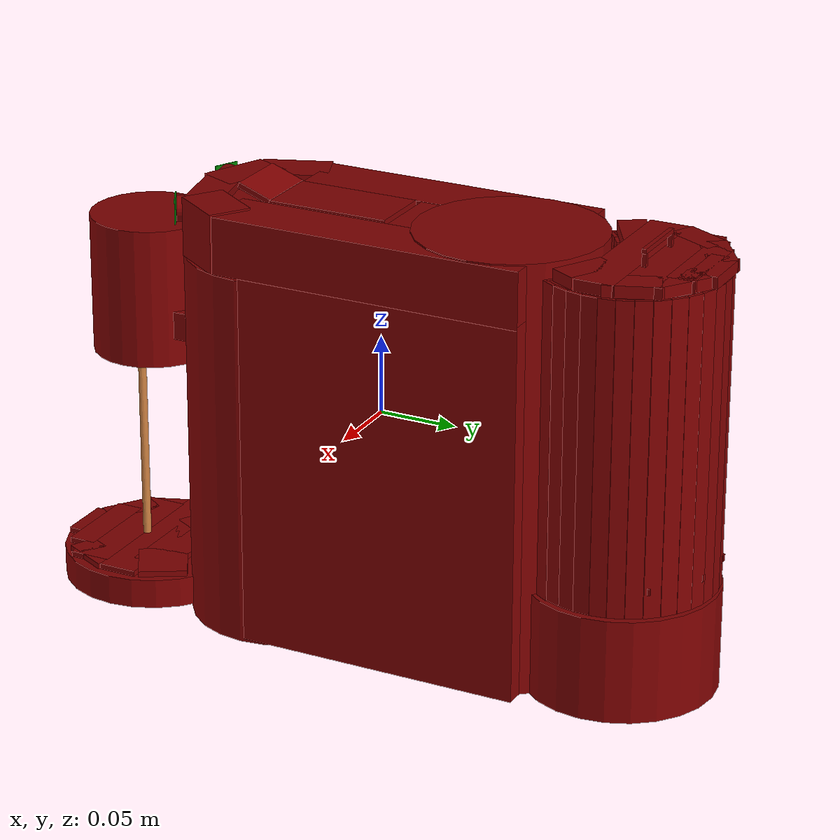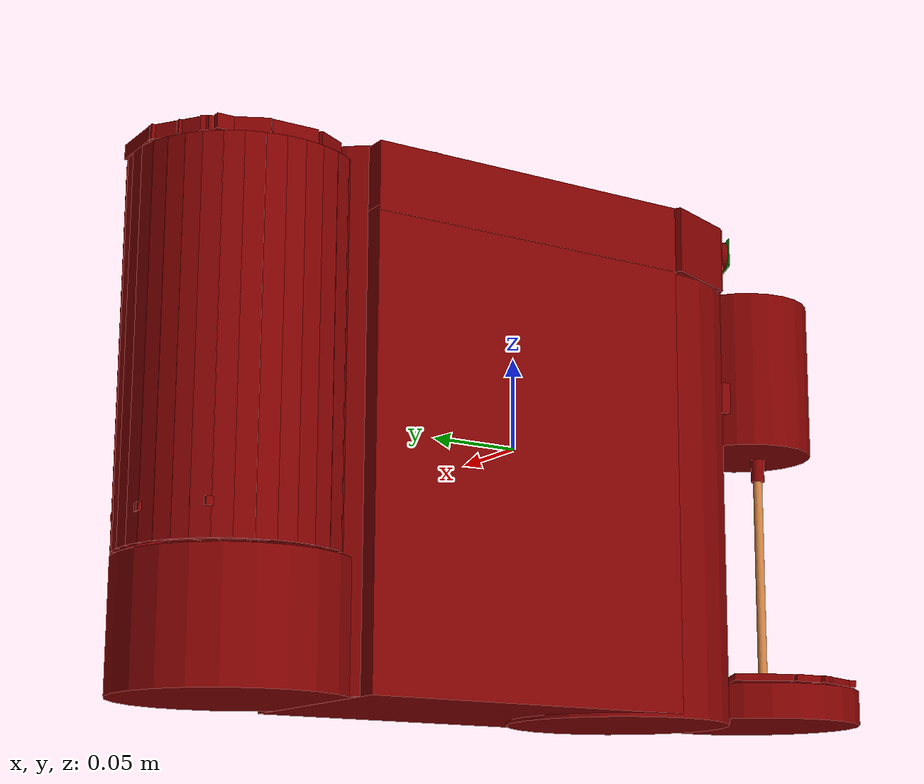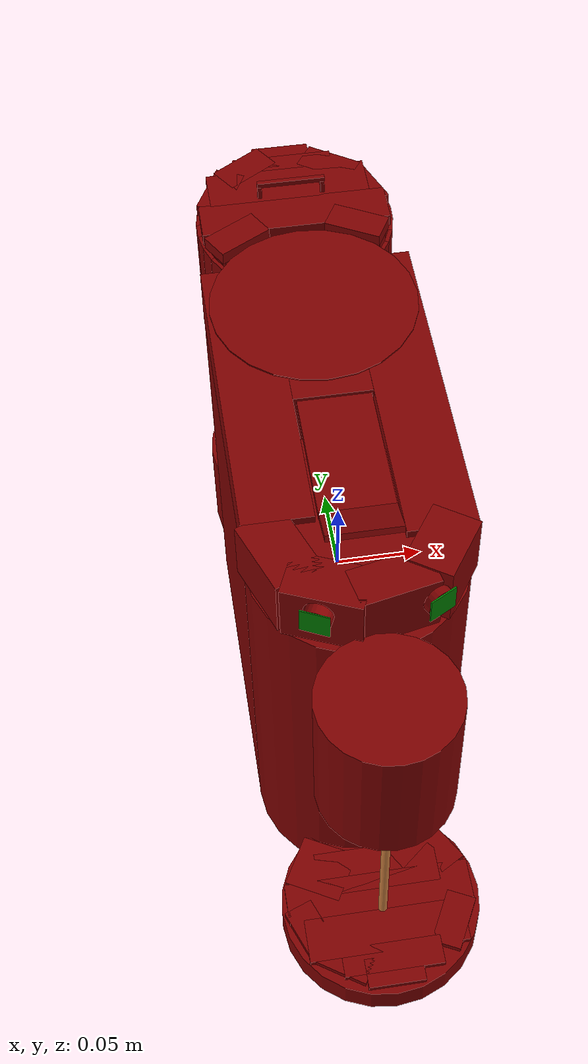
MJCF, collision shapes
<?xml version='1.0' encoding='UTF-8'?>
<mujoco model="model">
  <compiler angle="radian"/>
  <asset>
    <mesh file="visuals/Body001.obj" name="Body001_vis"/>
    <mesh file="visuals/Button001.obj" name="Button001_vis"/>
    <mesh file="visuals/Button002.obj" name="Button002_vis"/>
    <mesh file="visuals/Container001_Clear.obj" name="Container001_Clear_vis"/>
    <mesh file="visuals/Lid001.obj" name="Lid001_vis"/>
    <mesh file="visuals/Lid002.obj" name="Lid002_vis"/>
    <mesh file="visuals/Lid003.obj" name="Lid003_vis"/>
    <texture file="visuals/T_BC001.png" name="Body001_material" type="2d"/>
    <material name="Body001_material" rgba="1 1 1 1.0" texture="Body001_material" shininess="1" specular="1"/>
    <texture file="visuals/T_BC001.png" name="Button001_material" type="2d"/>
    <material name="Button001_material" rgba="1 1 1 1.0" texture="Button001_material" shininess="1" specular="1"/>
    <texture file="visuals/T_BC001.png" name="Button002_material" type="2d"/>
    <material name="Button002_material" rgba="1 1 1 1.0" texture="Button002_material" shininess="1" specular="1"/>
    <material name="Container001_Clear_material" rgba="0.800000011920929 0.800000011920929 0.800000011920929 0.060773469507694244" shininess="0.5" specular="0.3103448502657381"/>
    <texture file="visuals/T_BC001.png" name="Lid002_material" type="2d"/>
    <material name="Lid002_material" rgba="1 1 1 1.0" texture="Lid002_material" shininess="1" specular="1"/>
    <texture file="visuals/T_BC001.png" name="Lid001_material" type="2d"/>
    <material name="Lid001_material" rgba="1 1 1 1.0" texture="Lid001_material" shininess="1" specular="1"/>
    <texture file="visuals/T_BC001.png" name="Lid003_material" type="2d"/>
    <material name="Lid003_material" rgba="1 1 1 1.0" texture="Lid003_material" shininess="1" specular="1"/>
  </asset>
  <default>
    <default class="visual">
      <geom conaffinity="0" contype="0" group="1" type="mesh"/>
    </default>
    <default class="collision">
      <geom group="0" rgba="0.5 0 0 0.5"/>
    </default>
    <default class="spawn">
      <geom group="0" rgba="1 1 1 0.5" contype="0" conaffinity="0"/>
      <site group="0" rgba="1 1 1 0.5"/>
    </default>
    <default class="region">
      <geom group="1" conaffinity="0" contype="0" rgba="0 1 0 0"/>
    </default>
  </default>
  <worldbody>
    <body>
      <body name="object">
        <geom class="collision" type="box" pos="0.033377 -0.123392 0.122750" size="0.008107754401862621 0.00810775626450777 0.0003749088500626385" quat="0.6850370168685913 -0.6850365996360779 -0.1752842217683792 0.17528419196605682" name="start_button_2" rgba="0.0 0.5 0 0.5"/>
        <geom class="collision" type="box" pos="-0.031530 -0.125172 0.123180" size="0.008123134262859821 0.008123135194182396 0.00028663300327025354" quat="0.6893278956413269 -0.6893275380134583 0.15756691992282867 -0.15756681561470032" name="start_button_1" rgba="0.0 0.5 0 0.5"/>
        <site type="cylinder" rgba="0.8 0.5 0.25 1" size="0.0026102596893906593 0.06480149179697037" pos="-0.000062 -0.171329 -0.060672" name="coffee_liquid"/>
        <site rgba="0 0 0 0" size="0.009999999776482582 0.009999999776482582" pos="0.000000 -0.170998 -0.122211" name="receptacle_place_site"/>
        <geom mesh="Body001_vis" type="mesh" solimp="0.998 0.998 0.001" solref="0.001 1" density="100" friction="0.95 0.3 0.1" class="visual" material="Body001_material"/>
        <geom class="collision" type="cylinder" pos="-0.000085 0.085434 -0.005150" size="0.05943594127893448 0.1380547285079956" quat="1.0 0.0 0.0 0.0"/>
        <geom class="collision" type="cylinder" pos="-0.000071 -0.067746 -0.025487" size="0.06067289412021637 0.12002754956483841" quat="1.0 0.0 0.0 0.0"/>
        <geom class="collision" type="box" pos="0.041290 0.017888 0.113912" size="0.019130084663629532 0.10068270564079285 0.01811387576162815" quat="1.0 0.0 0.0 0.0"/>
        <geom class="collision" type="box" pos="-0.000131 0.026477 -0.022694" size="0.06055061146616936 0.0920943021774292 0.12082803249359131" quat="1.0 0.0 0.0 0.0"/>
        <geom class="collision" type="box" pos="-0.043306 -0.082548 0.113912" size="0.013925363309681416 0.02177164889872074 0.01811387576162815" quat="0.9832549095153809 0.0 0.0 0.18223552405834198"/>
        <geom class="collision" type="box" pos="0.018010 -0.128051 0.041595" size="0.00665710773319006 0.01646968349814415 0.008929953910410404" quat="1.0 0.0 0.0 0.0"/>
        <geom class="collision" type="box" pos="0.003027 0.048953 0.113832" size="0.0400843545794487 0.03352620452642441 0.01803458295762539" quat="1.0 0.0 0.0 0.0"/>
        <geom class="collision" type="box" pos="0.003027 -0.062831 0.111511" size="0.0400843545794487 0.039562687277793884 0.01571306213736534" quat="1.0 0.0 0.0 0.0"/>
        <geom class="collision" type="box" pos="-0.022196 -0.106216 0.113912" size="0.013004411943256855 0.02177165262401104 0.01811387576162815" quat="0.8338857889175415 0.0 0.0 0.5519370436668396"/>
        <geom class="collision" type="box" pos="0.010927 -0.108934 0.113912" size="0.011537442915141582 0.02177164889872074 0.01811387576162815" quat="0.6293203830718994 0.0 0.0 0.7771459817886353"/>
        <geom class="collision" type="box" pos="0.039131 -0.091595 0.114562" size="0.01358610950410366 0.01903485134243965 0.018764644861221313" quat="0.2923716604709625 0.0 0.0 0.9563047885894775"/>
        <geom class="collision" type="cylinder" pos="-0.000956 0.162873 -0.110124" size="0.06066026911139488 0.03334907069802284" quat="1.0 0.0 0.0 0.0"/>
        <geom class="collision" type="cylinder" pos="-0.000070 -0.171434 0.008159" size="0.003892710665240884 0.006618843879550695" quat="1.0 0.0 0.0 0.0"/>
        <geom class="collision" type="box" pos="-0.017768 -0.128051 0.041595" size="0.00665710773319006 0.01646968349814415 0.008929953910410404" quat="1.0 0.0 0.0 0.0"/>
        <geom class="collision" type="cylinder" pos="0.000059 -0.163931 -0.132125" size="0.05953378975391388 0.009571795351803303" quat="1.0 0.0 0.0 0.0"/>
        <geom class="collision" type="box" pos="-0.041597 0.026477 0.113912" size="0.01939186081290245 0.0920943021774292 0.01811387576162815" quat="1.0 0.0 0.0 0.0"/>
        <geom class="collision" type="cylinder" pos="-0.000071 -0.161399 0.059177" size="0.038454651832580566 0.04464395344257355" quat="1.0 0.0 0.0 0.0"/>
        <body name="Button001">
          <joint axis="0.34288111329078674 0.9393788576126099 0.0" pos="-0.028246 -0.118857 0.123134" limited="true" name="Button001_joint" range="0.0 0.003" type="slide" damping="1" frictionloss="1" armature=".01" stiffness="0.05"/>
          <geom mesh="Button001_vis" type="mesh" solimp="0.998 0.998 0.001" solref="0.001 1" density="100" friction="0.95 0.3 0.1" class="visual" material="Button001_material"/>
          <geom class="collision" type="cylinder" pos="-0.029964 -0.121960 0.123180" size="0.008123134262859821 0.002947181696072221" quat="0.6893278956413269 -0.6893275380134583 0.15756691992282867 -0.15756681561470032"/>
        </body>
        <body name="Button002">
          <joint axis="-0.48307958245277405 0.8755765557289124 0.0" pos="0.030269 -0.117960 0.122738" limited="true" name="Button002_joint" range="0.0 0.003" type="slide" damping="1" frictionloss="1" armature=".01" stiffness="0.05"/>
          <geom mesh="Button002_vis" type="mesh" solimp="0.998 0.998 0.001" solref="0.001 1" density="100" friction="0.95 0.3 0.1" class="visual" material="Button002_material"/>
          <geom class="collision" type="cylinder" pos="0.031727 -0.120778 0.122750" size="0.008107754401862621 0.0022811703383922577" quat="0.6850370168685913 -0.6850365996360779 -0.1752842217683792 0.17528419196605682"/>
        </body>
        <body name="Container001_Clear">
          <joint axis="0.0 0.0 1.0" pos="0.000028 0.175313 0.026082" limited="true" name="Container001_Clear_joint" range="0.0 0.1" type="slide" damping="1" frictionloss="1" armature=".01" stiffness="0.05"/>
          <geom mesh="Container001_Clear_vis" type="mesh" solimp="0.998 0.998 0.001" solref="0.001 1" density="100" friction="0.95 0.3 0.1" class="visual" material="Container001_Clear_material"/>
          <geom class="collision" type="box" pos="0.048455 0.132889 0.024585" size="0.0012182785430923104 0.005222825799137354 0.09964721649885178" quat="0.9588197469711304 0.0 0.0 -0.28401538729667664"/>
          <geom class="collision" type="box" pos="0.053064 0.142093 0.024782" size="0.0012182783102616668 0.005222824867814779 0.09945102035999298" quat="0.9816271662712097 0.0 0.0 -0.19080907106399536"/>
          <geom class="collision" type="box" pos="0.055929 0.151872 0.024782" size="0.0012182785430923104 0.005222825799137354 0.09945101290941238" quat="0.9945219159126282 0.0 0.0 -0.10452854633331299"/>
          <geom class="collision" type="box" pos="0.057236 0.161889 0.024782" size="0.0012182785430923104 0.005222825799137354 0.09945101290941238" quat="0.9998477101325989 0.0 0.0 -0.017452441155910492"/>
          <geom class="collision" type="box" pos="0.041721 0.133228 0.024782" size="0.0012182785430923104 0.005222825799137354 0.09945102035999298" quat="0.9099612236022949 0.0 0.0 0.41469329595565796"/>
          <geom class="collision" type="box" pos="0.054256 0.182342 0.024782" size="0.0012182786595076323 0.0052228267304599285 0.09945101290941238" quat="0.9862855672836304 0.0 0.0 0.16504766047000885"/>
          <geom class="collision" type="box" pos="0.049982 0.191878 0.024782" size="0.0012182786595076323 0.005222826264798641 0.09945102035999298" quat="0.9681476354598999 0.0 0.0 0.2503799796104431"/>
          <geom class="collision" type="box" pos="0.044035 0.200578 0.024782" size="0.0012182785430923104 0.005222825799137354 0.09945102035999298" quat="0.9396926164627075 0.0 0.0 0.3420201539993286"/>
          <geom class="collision" type="box" pos="0.036583 0.208000 0.024782" size="0.0012182785430923104 0.005222825799137354 0.09945102035999298" quat="0.9063077569007874 0.0 0.0 0.4226183295249939"/>
          <geom class="collision" type="box" pos="0.027974 0.213901 0.024782" size="0.001218278775922954 0.005222827196121216 0.09945101290941238" quat="0.866025447845459 0.0 0.0 0.4999999701976776"/>
          <geom class="collision" type="box" pos="0.018472 0.218197 0.024782" size="0.0012182785430923104 0.005222825799137354 0.09945101290941238" quat="0.8191520571708679 0.0 0.0 0.5735764503479004"/>
          <geom class="collision" type="box" pos="0.008633 0.220595 0.024782" size="0.0012182786595076323 0.005222826264798641 0.09945102035999298" quat="0.7660444378852844 0.0 0.0 0.6427876353263855"/>
          <geom class="collision" type="box" pos="-0.001572 0.221265 0.024782" size="0.0012182785430923104 0.005222825799137354 0.09945101290941238" quat="0.70710688829422 0.0 0.0 0.7071066498756409"/>
          <geom class="collision" type="box" pos="-0.011048 0.220230 0.024782" size="0.0012182785430923104 0.005222825799137354 0.09945102035999298" quat="0.6427876353263855 0.0 0.0 0.7660444378852844"/>
          <geom class="collision" type="box" pos="-0.020341 0.217523 0.024782" size="0.0012182785430923104 0.005222825799137354 0.09945101290941238" quat="0.5735764503479004 0.0 0.0 0.8191520571708679"/>
          <geom class="collision" type="box" pos="-0.029188 0.213126 0.024782" size="0.0012182786595076323 0.0052228267304599285 0.09945101290941238" quat="0.4999999701976776 0.0 0.0 0.866025447845459"/>
          <geom class="collision" type="box" pos="-0.037066 0.207529 0.024782" size="0.0012182785430923104 0.005222825799137354 0.09945102035999298" quat="0.42261824011802673 0.0 0.0 0.9063078165054321"/>
          <geom class="collision" type="box" pos="-0.043873 0.200807 0.024782" size="0.0012182785430923104 0.005222825799137354 0.09945102035999298" quat="0.3420201539993286 0.0 0.0 0.9396926164627075"/>
          <geom class="collision" type="box" pos="-0.049576 0.192645 0.024782" size="0.0012182786595076323 0.0052228267304599285 0.09945101290941238" quat="0.2588190734386444 0.0 0.0 0.9659258127212524"/>
          <geom class="collision" type="box" pos="-0.053784 0.183583 0.024782" size="0.0012182786595076323 0.005222826264798641 0.09945101290941238" quat="0.17364822328090668 0.0 0.0 0.9848077297210693"/>
          <geom class="collision" type="box" pos="-0.056408 0.173595 0.024782" size="0.0012182785430923104 0.005222825799137354 0.09945101290941238" quat="0.08715580403804779 0.0 0.0 0.9961947202682495"/>
          <geom class="collision" type="box" pos="-0.057193 0.163544 0.024782" size="0.0012182785430923104 0.005222825799137354 0.09945101290941238" quat="5.52335052361741e-07 0.0 -0.0 -1.0"/>
          <geom class="collision" type="box" pos="-0.056281 0.153418 0.024782" size="0.0012182784266769886 0.005222825799137354 0.09945102035999298" quat="0.0871562734246254 0.0 -0.0 -0.9961946606636047"/>
          <geom class="collision" type="box" pos="-0.053591 0.143542 0.024782" size="0.0012182786595076323 0.005222826264798641 0.09945101290941238" quat="0.17364822328090668 0.0 -0.0 -0.9848077297210693"/>
          <geom class="collision" type="box" pos="-0.049241 0.134133 0.024782" size="0.0012182785430923104 0.005222825799137354 0.09945102035999298" quat="0.2588194012641907 0.0 -0.0 -0.9659257531166077"/>
          <geom class="collision" type="box" pos="-0.043312 0.132041 0.024585" size="0.0012182785430923104 0.005222825799137354 0.09964721649885178" quat="0.41469326615333557 0.0 0.0 0.9099612832069397"/>
          <geom class="collision" type="box" pos="-0.034917 0.138322 0.024782" size="0.0012182785430923104 0.005222825799137354 0.09945102035999298" quat="0.4848094582557678 0.0 0.0 0.8746197819709778"/>
          <geom class="collision" type="box" pos="-0.025813 0.143256 0.024782" size="0.0012182785430923104 0.005222825799137354 0.09945101290941238" quat="0.544638991355896 0.0 0.0 0.8386706113815308"/>
          <geom class="collision" type="box" pos="-0.016216 0.146779 0.024782" size="0.001218278193846345 0.005222824867814779 0.09945102035999298" quat="0.6018149852752686 0.0 0.0 0.7986355423927307"/>
          <geom class="collision" type="box" pos="-0.006209 0.148707 0.024782" size="0.0012182785430923104 0.005222825799137354 0.09945101290941238" quat="0.6691306233406067 0.0 0.0 0.7431448101997375"/>
          <geom class="collision" type="box" pos="0.004022 0.148892 0.024782" size="0.0012182786595076323 0.005222826264798641 0.09945101290941238" quat="0.7313539385795593 0.0 0.0 0.6819981336593628"/>
          <geom class="collision" type="box" pos="0.014365 0.147311 0.024782" size="0.0012182785430923104 0.005222825799137354 0.09945102035999298" quat="0.7880106568336487 0.0 0.0 0.61566162109375"/>
          <geom class="collision" type="box" pos="0.024212 0.144051 0.024782" size="0.0012182786595076323 0.0052228267304599285 0.09945101290941238" quat="0.8338857889175415 0.0 0.0 0.5519370436668396"/>
          <geom class="collision" type="box" pos="0.033490 0.139214 0.024782" size="0.0012182786595076323 0.005222826264798641 0.09945102035999298" quat="0.8746196627616882 0.0 0.0 0.4848097264766693"/>
          <geom class="collision" type="box" pos="0.056685 0.172181 0.024782" size="0.0012182785430923104 0.005222825799137354 0.09945101290941238" quat="0.9975640773773193 0.0 0.0 0.06975650042295456"/>
          <geom class="collision" type="box" pos="-0.041157 0.186730 -0.057456" size="0.017046144232153893 0.008846818469464779 0.0021462563890963793" quat="0.5224984884262085 0.0 0.0 -0.8526402115821838"/>
          <geom class="collision" type="box" pos="0.026490 0.201494 -0.057456" size="0.017046144232153893 0.008846817538142204 0.0021462563890963793" quat="0.9563047289848328 0.0 0.0 -0.29237180948257446"/>
          <geom class="collision" type="box" pos="0.035211 0.148423 -0.057456" size="0.017046144232153893 0.008846818469464779 0.0021462563890963793" quat="0.9681476354598999 0.0 0.0 -0.2503799796104431"/>
          <geom class="collision" type="box" pos="-0.036010 0.147880 -0.057456" size="0.017046144232153893 0.008846817538142204 0.0021462563890963793" quat="0.9659258127212524 0.0 0.0 0.2588191032409668"/>
          <geom class="collision" type="box" pos="-0.001205 0.212293 -0.057456" size="0.017046144232153893 0.008846817538142204 0.0021462563890963793" quat="1.0 0.0 0.0 0.0"/>
          <geom class="collision" type="box" pos="-0.001259 0.203781 -0.057456" size="0.029769079759716988 0.008846817538142204 0.0021462563890963793" quat="1.0 0.0 0.0 0.0"/>
          <geom class="collision" type="box" pos="-0.000761 0.187083 -0.057456" size="0.04784898832440376 0.01339284423738718 0.0021462563890963793" quat="1.0 0.0 0.0 0.0"/>
          <geom class="collision" type="box" pos="-0.000193 0.161985 -0.057456" size="0.05572507157921791 0.0125335194170475 0.0021462563890963793" quat="1.0 0.0 0.0 0.0"/>
          <geom class="collision" type="box" pos="-0.024352 0.204823 -0.057456" size="0.017046144232153893 0.008846817538142204 0.0021462563890963793" quat="0.2840152382850647 0.0 0.0 -0.9588197469711304"/>
          <geom class="collision" type="box" pos="0.043325 0.180466 -0.057456" size="0.017046146094799042 0.008846819400787354 0.0021462563890963793" quat="0.824126124382019 0.0 0.0 -0.5664063692092896"/>
          <body name="Lid002">
            <joint axis="0.0 0.0 1.0" pos="0.000000 0.175370 0.133814" limited="true" name="Lid002_joint" range="0.0 0.05" type="slide" damping="1" frictionloss="1" armature=".01" stiffness="0.05" springref="-10"/>
            <geom mesh="Lid002_vis" type="mesh" solimp="0.998 0.998 0.001" solref="0.001 1" density="100" friction="0.95 0.3 0.1" class="visual" material="Lid002_material"/>
            <geom class="collision" type="box" pos="-0.024352 0.205874 0.128269" size="0.017046144232153893 0.008846817538142204 0.0037567391991615295" quat="0.2840152382850647 0.0 0.0 -0.9588197469711304"/>
            <geom class="collision" type="box" pos="-0.000193 0.163036 0.128269" size="0.05572507157921791 0.0125335194170475 0.0037567391991615295" quat="1.0 0.0 0.0 0.0"/>
            <geom class="collision" type="box" pos="-0.000761 0.188134 0.128269" size="0.04784898832440376 0.01339284423738718 0.0037567391991615295" quat="1.0 0.0 0.0 0.0"/>
            <geom class="collision" type="box" pos="-0.001259 0.204832 0.128269" size="0.029769079759716988 0.008846817538142204 0.0037567391991615295" quat="1.0 0.0 0.0 0.0"/>
            <geom class="collision" type="box" pos="-0.001205 0.213344 0.128269" size="0.017046144232153893 0.008846817538142204 0.0037567391991615295" quat="1.0 0.0 0.0 0.0"/>
            <geom class="collision" type="box" pos="-0.036010 0.148931 0.128269" size="0.017046144232153893 0.008846817538142204 0.003756739431992173" quat="0.9659258127212524 0.0 0.0 0.2588191032409668"/>
            <geom class="collision" type="box" pos="0.035211 0.149474 0.128269" size="0.017046144232153893 0.008846818469464779 0.003756739431992173" quat="0.9681476354598999 0.0 0.0 -0.2503799796104431"/>
            <geom class="collision" type="box" pos="0.043325 0.181517 0.128269" size="0.017046146094799042 0.008846819400787354 0.003756739431992173" quat="0.824126124382019 0.0 0.0 -0.5664063692092896"/>
            <geom class="collision" type="box" pos="0.026490 0.202545 0.128269" size="0.017046144232153893 0.008846817538142204 0.003756739431992173" quat="0.9563047289848328 0.0 0.0 -0.29237180948257446"/>
            <geom class="collision" type="box" pos="-0.041157 0.187781 0.128269" size="0.017046144232153893 0.008846818469464779 0.003756739431992173" quat="0.5224984884262085 0.0 0.0 -0.8526402115821838"/>
            <geom class="collision" type="box" pos="0.018862 0.178498 0.135875" size="0.00119127391371876 0.0013586157001554966 0.004306853283196688" quat="1.0 0.0 0.0 0.0"/>
            <geom class="collision" type="box" pos="-0.018749 0.178498 0.135875" size="0.00119127391371876 0.0013586157001554966 0.004306853283196688" quat="1.0 0.0 0.0 0.0"/>
            <geom class="collision" type="box" pos="0.000114 0.178498 0.141524" size="0.020163578912615776 0.0014171447837725282 0.001490486436523497" quat="1.0 0.0 0.0 0.0"/>
          </body>
        </body>
        <body name="Lid001">
          <joint axis="-1.0 0.0 0.0" pos="-0.000000 0.012232 0.132026" limited="true" name="Lid001_joint" range="0.0 1.5707963267948966" type="hinge" damping="1" frictionloss="1" armature=".01" stiffness="0.05"/>
          <geom mesh="Lid001_vis" type="mesh" solimp="0.998 0.998 0.001" solref="0.001 1" density="100" friction="0.95 0.3 0.1" class="visual" material="Lid001_material"/>
          <geom class="collision" type="box" pos="0.000008 -0.075908 0.135610" size="0.020570728927850723 0.011319028213620186 0.0018015123205259442" quat="0.9848077893257141 -0.17364810407161713 0.0 0.0"/>
          <geom class="collision" type="box" pos="0.000008 -0.026532 0.130725" size="0.020570728927850723 0.03908515349030495 0.0023022110108286142" quat="1.0 0.0 0.0 0.0"/>
        </body>
        <body name="Lid003">
          <joint axis="0.0 0.0 1.0" pos="0.000000 -0.170338 -0.119723" limited="true" name="Lid003_joint" range="0.0 0.05" type="slide" damping="1" frictionloss="1" armature=".01" stiffness="0.05" springref="-20"/>
          <geom mesh="Lid003_vis" type="mesh" solimp="0.998 0.998 0.001" solref="0.001 1" density="100" friction="0.95 0.3 0.1" class="visual" material="Lid003_material"/>
          <geom class="collision" type="box" pos="0.040485 -0.185138 -0.119349" size="0.017046144232153893 0.008846818469464779 0.0018110563978552818" quat="0.8526402115821838 0.0 0.0 0.5224984884262085"/>
          <geom class="collision" type="box" pos="-0.027162 -0.199901 -0.119349" size="0.017046144232153893 0.008846817538142204 0.0018110565142706037" quat="0.2923717796802521 0.0 0.0 0.9563047289848328"/>
          <geom class="collision" type="box" pos="-0.043997 -0.178873 -0.119349" size="0.01704614795744419 0.008846819400787354 0.0018110565142706037" quat="0.5664061307907104 0.0 0.0 0.8241262435913086"/>
          <geom class="collision" type="box" pos="-0.032340 -0.140438 -0.119349" size="0.017046144232153893 0.01615563966333866 0.0018110566306859255" quat="0.2503805458545685 0.0 0.0 0.9681475162506104"/>
          <geom class="collision" type="box" pos="0.031961 -0.140438 -0.119349" size="0.017046144232153893 0.01560122985392809 0.0018110563978552818" quat="0.25881895422935486 0.0 0.0 -0.9659258723258972"/>
          <geom class="collision" type="box" pos="0.000532 -0.210700 -0.119349" size="0.017046144232153893 0.008846817538142204 0.0018110565142706037" quat="6.715443419125222e-07 0.0 0.0 1.0"/>
          <geom class="collision" type="box" pos="0.000587 -0.202188 -0.119349" size="0.029769079759716988 0.008846817538142204 0.0018110565142706037" quat="6.715443419125222e-07 0.0 0.0 1.0"/>
          <geom class="collision" type="box" pos="0.000089 -0.185491 -0.119349" size="0.04784898832440376 0.01339284423738718 0.0018110565142706037" quat="6.715443419125222e-07 0.0 0.0 1.0"/>
          <geom class="collision" type="box" pos="0.000934 -0.144594 -0.119349" size="0.03661051392555237 0.013927038758993149 0.0018110565142706037" quat="6.715443419125222e-07 0.0 0.0 1.0"/>
          <geom class="collision" type="box" pos="-0.000479 -0.160393 -0.119349" size="0.05572507157921791 0.0125335194170475 0.0018110565142706037" quat="6.715443419125222e-07 0.0 0.0 1.0"/>
        </body>
        <geom class="region" name="reg_main" type="box" pos="0.0 0.0 -0.0010560000000000014" size="0.060192 0.222703 0.141958"/>
      </body>
    </body>
  </worldbody>
  <actuator>
    <motor name="Button001_joint_actuator" joint="Button001_joint" gear="0.5"/>
    <motor name="Button002_joint_actuator" joint="Button002_joint" gear="0.5"/>
    <motor name="Container001_Clear_joint_actuator" joint="Container001_Clear_joint" gear="10"/>
    <motor name="Lid001_joint_actuator" joint="Lid001_joint" gear="10"/>
    <motor name="Lid003_joint_actuator" joint="Lid003_joint" gear="10"/>
    <motor name="Lid002_joint_actuator" joint="Lid002_joint" gear="10"/>
  </actuator>
</mujoco>
